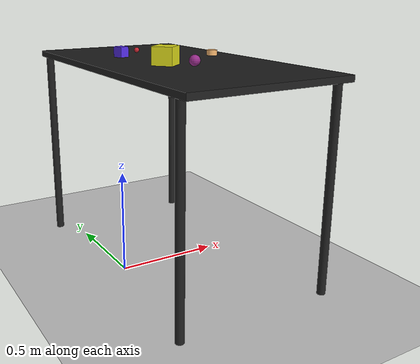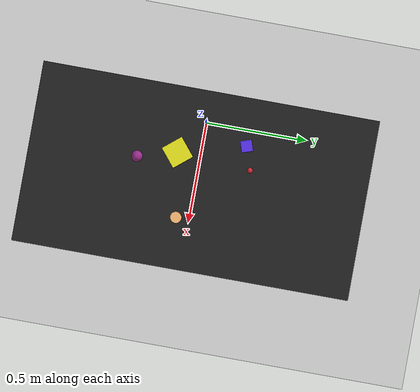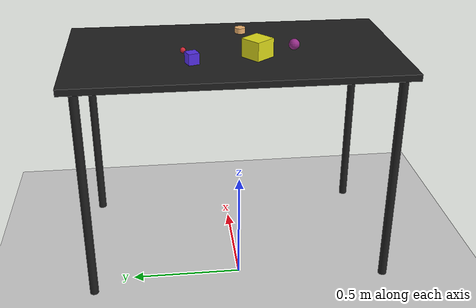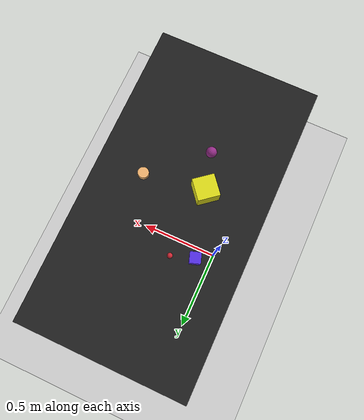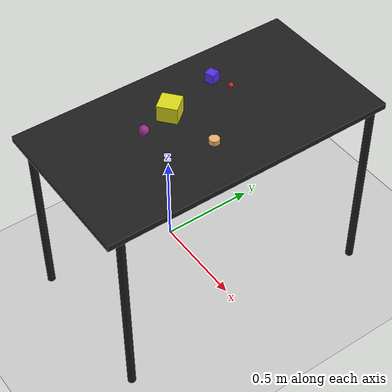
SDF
<?xml version="1.0" ?>
<sdf version="1.6">
  <world name="arm_world">
    <plugin filename="gz-sim-physics-system" name="gz::sim::systems::Physics">
      <engine>
        <filename>libgz-physics-bullet-featherstone-plugin.so</filename>
      </engine>
    </plugin>
    <plugin filename="gz-sim-user-commands-system" name="gz::sim::systems::UserCommands"/>
    <plugin filename="gz-sim-scene-broadcaster-system" name="gz::sim::systems::SceneBroadcaster"/>
    <plugin filename="gz-sim-sensors-system" name="gz::sim::systems::Sensors">
      <render_engine>ogre2</render_engine>
    </plugin>
    <gravity>0.0 0.0 -9.8</gravity>
    <scene>
      <shadows>false</shadows>
    </scene>
    <gui>
      <camera name="user_camera">
        <pose>0.75 -0.75 1.4 0 0.29 2.21</pose>
      </camera>
    </gui>
    <include>
      <uri>https://fuel.gazebosim.org/1.0/OpenRobotics/models/Sun</uri>
    </include>
    <model name="table">
      <static>true</static>
      <include>
        <uri>model://table</uri>
      </include>
      <pose>0.29 0 0 0 0 1.5708</pose>
    </model>
    <model name="ground_plane">
      <static>true</static>
      <link name="link">
        <collision name="collision">
          <geometry>
            <plane>
              <normal>0 0 1</normal>
            </plane>
          </geometry>
          <surface>
            <friction>
              <ode>
                <mu>1.0</mu>
                <mu2>1.0</mu2>
              </ode>
            </friction>
          </surface>
        </collision>
        <visual name="visual">
          <geometry>
            <plane>
              <normal>0 0 1</normal>
              <size>100 100</size>
            </plane>
          </geometry>
          <material>
            <ambient>0.8 0.8 0.8 1</ambient>
            <diffuse>0.8 0.8 0.8 1</diffuse>
            <specular>0.8 0.8 0.8 1</specular>
          </material>
        </visual>
      </link>
    </model>
    <model name="sphere_m_0">
      <pose>0.229 -0.272 1.05 0 0 3.69</pose>
      <link name="sphere_m_0_link">
        <inertial>
          <mass>0.05</mass>
          <inertia>
            <ixx>2.04e-7</ixx>
            <iyy>2.04e-7</iyy>
            <izz>3.9e-8</izz>
            <ixy>0</ixy>
            <ixz>0</ixz>
            <iyz>0</iyz>
          </inertia>
        </inertial>
        <collision name="sphere_m_0_collision">
          <geometry>
            <sphere>
              <radius>0.025</radius>
            </sphere>
          </geometry>
          <surface>
            <friction>
              <ode>
                <mu>0.8</mu>
                <mu2>0.8</mu2>
                <fdir1>0 0 1</fdir1>
                <slip1>0.001</slip1>
                <slip2>0.001</slip2>
              </ode>
              <torsional>
                <coefficient>0.1</coefficient>
                <surface_radius>0.015</surface_radius>
                <use_patch_radius>true</use_patch_radius>
              </torsional>
            </friction>
            <contact>
              <ode>
                <kp>1e5</kp>
                <kd>10</kd>
                <max_vel>0.1</max_vel>
                <min_depth>0.001</min_depth>
                <soft_cfm>0.01</soft_cfm>
                <soft_erp>0.2</soft_erp>
              </ode>
            </contact>
            <bounce>
              <restitution_coefficient>0.2</restitution_coefficient>
              <threshold>0.01</threshold>
            </bounce>
          </surface>
        </collision>
        <visual name="sphere_m_0_visual">
          <geometry>
            <sphere>
              <radius>0.025</radius>
            </sphere>
          </geometry>
          <material>
            <ambient>0.58 0.17 0.53 1</ambient>
            <diffuse>0.58 0.17 0.53 1</diffuse>
          </material>
        </visual>
        <velocity_decay>
          <linear>1</linear>
          <angular>1</angular>
        </velocity_decay>
      </link>
    </model>
    <model name="cylinder_m_1">
      <pose>0.463 -0.057 1.05 0 0 6.02</pose>
      <link name="cylinder_m_1_link">
        <inertial>
          <mass>0.05</mass>
          <inertia>
            <ixx>2.04e-7</ixx>
            <iyy>2.04e-7</iyy>
            <izz>3.9e-8</izz>
            <ixy>0</ixy>
            <ixz>0</ixz>
            <iyz>0</iyz>
          </inertia>
        </inertial>
        <collision name="cylinder_m_1_collision">
          <geometry>
            <cylinder>
              <radius>0.025</radius>
              <length>0.025</length>
            </cylinder>
          </geometry>
          <surface>
            <friction>
              <ode>
                <mu>0.8</mu>
                <mu2>0.8</mu2>
                <fdir1>0 0 1</fdir1>
                <slip1>0.001</slip1>
                <slip2>0.001</slip2>
              </ode>
              <torsional>
                <coefficient>0.1</coefficient>
                <surface_radius>0.015</surface_radius>
                <use_patch_radius>true</use_patch_radius>
              </torsional>
            </friction>
            <contact>
              <ode>
                <kp>1e5</kp>
                <kd>10</kd>
                <max_vel>0.1</max_vel>
                <min_depth>0.001</min_depth>
                <soft_cfm>0.01</soft_cfm>
                <soft_erp>0.2</soft_erp>
              </ode>
            </contact>
            <bounce>
              <restitution_coefficient>0.2</restitution_coefficient>
              <threshold>0.01</threshold>
            </bounce>
          </surface>
        </collision>
        <visual name="cylinder_m_1_visual">
          <geometry>
            <cylinder>
              <radius>0.025</radius>
              <length>0.025</length>
            </cylinder>
          </geometry>
          <material>
            <ambient>0.94 0.7 0.43 1</ambient>
            <diffuse>0.94 0.7 0.43 1</diffuse>
          </material>
        </visual>
        <velocity_decay>
          <linear>1</linear>
          <angular>1</angular>
        </velocity_decay>
      </link>
    </model>
    <model name="cube_l_2">
      <pose>0.183 -0.1 1.05 0 0 2.26</pose>
      <link name="cube_l_2_link">
        <inertial>
          <mass>0.05</mass>
          <inertia>
            <ixx>2.04e-7</ixx>
            <iyy>2.04e-7</iyy>
            <izz>3.9e-8</izz>
            <ixy>0</ixy>
            <ixz>0</ixz>
            <iyz>0</iyz>
          </inertia>
        </inertial>
        <collision name="cube_l_2_collision">
          <geometry>
            <box>
              <size>0.1 0.1 0.1</size>
            </box>
          </geometry>
          <surface>
            <friction>
              <ode>
                <mu>0.8</mu>
                <mu2>0.8</mu2>
                <fdir1>0 0 1</fdir1>
                <slip1>0.001</slip1>
                <slip2>0.001</slip2>
              </ode>
              <torsional>
                <coefficient>0.1</coefficient>
                <surface_radius>0.015</surface_radius>
                <use_patch_radius>true</use_patch_radius>
              </torsional>
            </friction>
            <contact>
              <ode>
                <kp>1e5</kp>
                <kd>10</kd>
                <max_vel>0.1</max_vel>
                <min_depth>0.001</min_depth>
                <soft_cfm>0.01</soft_cfm>
                <soft_erp>0.2</soft_erp>
              </ode>
            </contact>
            <bounce>
              <restitution_coefficient>0.2</restitution_coefficient>
              <threshold>0.01</threshold>
            </bounce>
          </surface>
        </collision>
        <visual name="cube_l_2_visual">
          <geometry>
            <box>
              <size>0.1 0.1 0.1</size>
            </box>
          </geometry>
          <material>
            <ambient>0.87 0.86 0.1 1</ambient>
            <diffuse>0.87 0.86 0.1 1</diffuse>
          </material>
        </visual>
        <velocity_decay>
          <linear>1</linear>
          <angular>1</angular>
        </velocity_decay>
      </link>
    </model>
    <model name="cube_m_3">
      <pose>0.102 0.192 1.05 0 0 1.89</pose>
      <link name="cube_m_3_link">
        <inertial>
          <mass>0.05</mass>
          <inertia>
            <ixx>2.04e-7</ixx>
            <iyy>2.04e-7</iyy>
            <izz>3.9e-8</izz>
            <ixy>0</ixy>
            <ixz>0</ixz>
            <iyz>0</iyz>
          </inertia>
        </inertial>
        <collision name="cube_m_3_collision">
          <geometry>
            <box>
              <size>0.05 0.05 0.05</size>
            </box>
          </geometry>
          <surface>
            <friction>
              <ode>
                <mu>0.8</mu>
                <mu2>0.8</mu2>
                <fdir1>0 0 1</fdir1>
                <slip1>0.001</slip1>
                <slip2>0.001</slip2>
              </ode>
              <torsional>
                <coefficient>0.1</coefficient>
                <surface_radius>0.015</surface_radius>
                <use_patch_radius>true</use_patch_radius>
              </torsional>
            </friction>
            <contact>
              <ode>
                <kp>1e5</kp>
                <kd>10</kd>
                <max_vel>0.1</max_vel>
                <min_depth>0.001</min_depth>
                <soft_cfm>0.01</soft_cfm>
                <soft_erp>0.2</soft_erp>
              </ode>
            </contact>
            <bounce>
              <restitution_coefficient>0.2</restitution_coefficient>
              <threshold>0.01</threshold>
            </bounce>
          </surface>
        </collision>
        <visual name="cube_m_3_visual">
          <geometry>
            <box>
              <size>0.05 0.05 0.05</size>
            </box>
          </geometry>
          <material>
            <ambient>0.33 0.18 0.9 1</ambient>
            <diffuse>0.33 0.18 0.9 1</diffuse>
          </material>
        </visual>
        <velocity_decay>
          <linear>1</linear>
          <angular>1</angular>
        </velocity_decay>
      </link>
    </model>
    <model name="sphere_s_4">
      <pose>0.204 0.226 1.05 0 0 2.37</pose>
      <link name="sphere_s_4_link">
        <inertial>
          <mass>0.05</mass>
          <inertia>
            <ixx>2.04e-7</ixx>
            <iyy>2.04e-7</iyy>
            <izz>3.9e-8</izz>
            <ixy>0</ixy>
            <ixz>0</ixz>
            <iyz>0</iyz>
          </inertia>
        </inertial>
        <collision name="sphere_s_4_collision">
          <geometry>
            <sphere>
              <radius>0.0125</radius>
            </sphere>
          </geometry>
          <surface>
            <friction>
              <ode>
                <mu>0.8</mu>
                <mu2>0.8</mu2>
                <fdir1>0 0 1</fdir1>
                <slip1>0.001</slip1>
                <slip2>0.001</slip2>
              </ode>
              <torsional>
                <coefficient>0.1</coefficient>
                <surface_radius>0.015</surface_radius>
                <use_patch_radius>true</use_patch_radius>
              </torsional>
            </friction>
            <contact>
              <ode>
                <kp>1e5</kp>
                <kd>10</kd>
                <max_vel>0.1</max_vel>
                <min_depth>0.001</min_depth>
                <soft_cfm>0.01</soft_cfm>
                <soft_erp>0.2</soft_erp>
              </ode>
            </contact>
            <bounce>
              <restitution_coefficient>0.2</restitution_coefficient>
              <threshold>0.01</threshold>
            </bounce>
          </surface>
        </collision>
        <visual name="sphere_s_4_visual">
          <geometry>
            <sphere>
              <radius>0.0125</radius>
            </sphere>
          </geometry>
          <material>
            <ambient>0.8 0.15 0.2 1</ambient>
            <diffuse>0.8 0.15 0.2 1</diffuse>
          </material>
        </visual>
        <velocity_decay>
          <linear>1</linear>
          <angular>1</angular>
        </velocity_decay>
      </link>
    </model>
  </world>
</sdf>

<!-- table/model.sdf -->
<sdf version="1.5">
  <model name="table">
    <static>true</static>
    <link name="link">
      <collision name="surface">
        <pose>0 0 1.0 0 0 0</pose>
        <geometry>
          <box>
            <size>1.5 0.8 0.03</size>
          </box>
        </geometry>
        <surface>
          <friction>
            <ode>
              <mu>0.6</mu>
              <mu2>0.6</mu2>
            </ode>
          </friction>
        </surface>
      </collision>
      <visual name="surface">
        <pose>0 0 1.0 0 0 0</pose>
        <geometry>
          <box>
            <size>1.5 0.8 0.03</size>
          </box>
        </geometry>
        <material>
          <script>
            <uri>file://media/materials/scripts/gazebo.material</uri>
            <name>Gazebo/Black</name>
          </script>
        </material>
      </visual>
      <collision name="front_left_leg">
        <pose>0.68 0.38 0.5 0 0 0</pose>
        <geometry>
          <cylinder>
            <radius>0.02</radius>
            <length>1.0</length>
          </cylinder>
        </geometry>
      </collision>
      <visual name="front_left_leg">
        <pose>0.68 0.38 0.5 0 0 0</pose>
        <geometry>
          <cylinder>
            <radius>0.02</radius>
            <length>1.0</length>
          </cylinder>
        </geometry>
        <material>
          <script>
            <uri>file://media/materials/scripts/gazebo.material</uri>
            <name>Gazebo/Black</name>
          </script>
        </material>
      </visual>
      <collision name="front_right_leg">
        <pose>0.68 -0.38 0.5 0 0 0</pose>
        <geometry>
          <cylinder>
            <radius>0.02</radius>
            <length>1.0</length>
          </cylinder>
        </geometry>
      </collision>
      <visual name="front_right_leg">
        <pose>0.68 -0.38 0.5 0 0 0</pose>
        <geometry>
          <cylinder>
            <radius>0.02</radius>
            <length>1.0</length>
          </cylinder>
        </geometry>
        <material>
          <script>
            <uri>file://media/materials/scripts/gazebo.material</uri>
            <name>Gazebo/Black</name>
          </script>
        </material>
      </visual>
      <collision name="back_right_leg">
        <pose>-0.68 -0.38 0.5 0 0 0</pose>
        <geometry>
          <cylinder>
            <radius>0.02</radius>
            <length>1.0</length>
          </cylinder>
        </geometry>
      </collision>
      <visual name="back_right_leg">
        <pose>-0.68 -0.38 0.5 0 0 0</pose>
        <geometry>
          <cylinder>
            <radius>0.02</radius>
            <length>1.0</length>
          </cylinder>
        </geometry>
        <material>
          <script>
            <uri>file://media/materials/scripts/gazebo.material</uri>
            <name>Gazebo/Black</name>
          </script>
        </material>
      </visual>
      <collision name="back_left_leg">
        <pose>-0.68 0.38 0.5 0 0 0</pose>
        <geometry>
          <cylinder>
            <radius>0.02</radius>
            <length>1.0</length>
          </cylinder>
        </geometry>
      </collision>
      <visual name="back_left_leg">
        <pose>-0.68 0.38 0.5 0 0 0</pose>
        <geometry>
          <cylinder>
            <radius>0.02</radius>
            <length>1.0</length>
          </cylinder>
        </geometry>
        <material>
          <script>
            <uri>file://media/materials/scripts/gazebo.material</uri>
            <name>Gazebo/Black</name>
          </script>
        </material>
      </visual>
    </link>
  </model>
</sdf>
